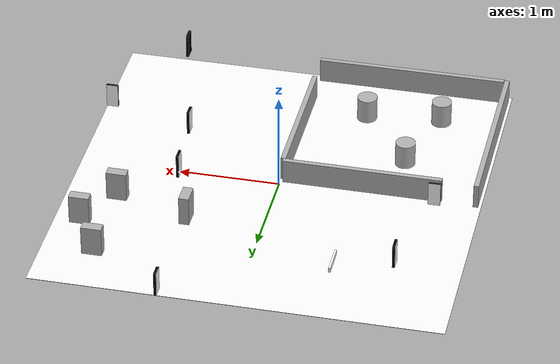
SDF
<?xml version="1.0"?>
<sdf version="1.6">
  <world name="default">
  <plugin
    filename="gz-sim-physics-system"
    name="gz::sim::systems::Physics">
  </plugin>
  <plugin
    filename="gz-sim-user-commands-system"
    name="gz::sim::systems::UserCommands">
  </plugin>
  <plugin
    filename="gz-sim-scene-broadcaster-system"
    name="gz::sim::systems::SceneBroadcaster">
  </plugin>
  <plugin
    filename="gz-sim-sensors-system"
    name="gz::sim::systems::Sensors">
    <render_engine>ogre2</render_engine>
  </plugin>
  <plugin
    filename="gz-sim-imu-system"
    name="gz::sim::systems::Imu">
  </plugin>

    <model name='ground'>
      <pose>0 0 0 0 -0 0</pose>
      <scale>1 1 1</scale>
      <link name='ground'>
        <pose>0 0 0 0 -0 0</pose>
        <velocity>0 0 0 0 -0 0</velocity>
        <acceleration>0 0 0 0 -0 0</acceleration>
        <wrench>0 0 0 0 -0 0</wrench>
      </link>
    </model>

    <model name="barrier_1">
      <static>true</static>
      <pose>1.49 0.54 0.15 0 0 0</pose>
      <link name="link">
        <visual name="visual">
          <geometry>
            <box>
              <size>0.2 0.1 0.3</size>
            </box>
          </geometry>
          <material>
            <ambient>0.7 0.7 0.7 1</ambient>
            <diffuse>0.7 0.7 0.7 1</diffuse>
            <specular>0.01 0.01 0.01 1</specular>
          </material>
        </visual>
        <collision name="collision">
          <geometry>
            <box>
              <size>0.25 0.1 0.3</size>
            </box>
          </geometry>
        </collision>
      </link>
    </model>

    <model name="barrier_2">
      <static>true</static>
      <pose>1.74 1.0 0.15 0 0 0</pose>
      <link name="link">
        <visual name="visual">
          <geometry>
            <box>
              <size>0.2 0.1 0.3</size>
            </box>
          </geometry>
          <material>
            <ambient>0.7 0.7 0.7 1</ambient>
            <diffuse>0.7 0.7 0.7 1</diffuse>
            <specular>0.01 0.01 0.01 1</specular>
          </material>
        </visual>
        <collision name="collision">
          <geometry>
            <box>
              <size>0.25 0.1 0.3</size>
            </box>
          </geometry>
        </collision>
      </link>
    </model>

    <model name="barrier_3">
      <static>true</static>
      <pose>1.49 1.464 0.15 0 0 0</pose>
      <link name="link">
        <visual name="visual">
          <geometry>
            <box>
              <size>0.2 0.1 0.3</size>
            </box>
          </geometry>
          <material>
            <ambient>0.7 0.7 0.7 1</ambient>
            <diffuse>0.7 0.7 0.7 1</diffuse>
            <specular>0.01 0.01 0.01 1</specular>
          </material>
        </visual>
        <collision name="collision">
          <geometry>
            <box>
              <size>0.25 0.1 0.3</size>
            </box>
          </geometry>
        </collision>
      </link>
    </model>

    <model name="parking_barrier_left">
      <static>true</static>
      <pose>0.75 0.75 0.15 0 0 0</pose>
      <link name="link">
        <visual name="visual">
          <geometry>
            <box>
              <size>0.1 0.2 0.3</size>
            </box>
          </geometry>
          <material>
            <ambient>0.7 0.7 0.7 1</ambient>
            <diffuse>0.7 0.7 0.7 1</diffuse>
            <specular>0.01 0.01 0.01 1</specular>
          </material>
        </visual>
        <collision name="collision">
          <geometry>
            <box>
              <size>0.25 0.1 0.3</size>
            </box>
          </geometry>
        </collision>
      </link>
    </model>

    <model name="traffic_tunnel">
      <static>true</static>
      <allow_auto_disable>true</allow_auto_disable>
      <pose>-0.964699 -1.03574 0 0 0 0</pose>

      <link name="wall_1">
        <pose>-0.980783 0.049883 0 0 0 1.5708</pose>
        <self_collide>false</self_collide>
        <kinematic>false</kinematic>

        <visual name="wall_1_visual">
          <pose>0 0 0.125 0 0 0</pose>
          <geometry>
            <box>
              <size>1.9 0.05 0.25</size>
            </box>
          </geometry>
          <material>
            <ambient>0.7 0.7 0.7 1</ambient>
            <diffuse>0.7 0.7 0.7 1</diffuse>
            <specular>0.01 0.01 0.01 1</specular>
            <emissive>0 0 0 1</emissive>
          </material>
          <cast_shadows>true</cast_shadows>
          <transparency>0.0</transparency>
        </visual>

        <collision name="wall_1_collision">
          <pose>0 0 0.125 0 0 0</pose>
          <geometry>
            <box>
              <size>1.9 0.05 0.25</size>
            </box>
          </geometry>
          <surface>
            <friction>
              <ode>
                <mu>1.0</mu>
                <mu2>1.0</mu2>
              </ode>
            </friction>
            <bounce>
              <restitution_coefficient>0.0</restitution_coefficient>
              <threshold>1e6</threshold>
            </bounce>
            <contact>
              <ode>
                <soft_cfm>0.0</soft_cfm>
                <soft_erp>0.2</soft_erp>
                <kp>1e13</kp>
                <kd>1.0</kd>
                <max_vel>0.01</max_vel>
                <min_depth>0.0</min_depth>
              </ode>
            </contact>
          </surface>
        </collision>
      </link>

      <link name="wall_2">
        <pose>0 -0.89 0 0 0 0</pose>
        <self_collide>false</self_collide>
        <kinematic>false</kinematic>

        <visual name="wall_2_visual">
          <pose>0 0 0.125 0 0 0</pose>
          <geometry>
            <box>
              <size>1.9 0.05 0.25</size>
            </box>
          </geometry>
          <material>
            <ambient>0.7 0.7 0.7 1</ambient>
            <diffuse>0.7 0.7 0.7 1</diffuse>
            <specular>0.01 0.01 0.01 1</specular>
            <emissive>0 0 0 1</emissive>
          </material>
          <cast_shadows>true</cast_shadows>
          <transparency>0.0</transparency>
        </visual>

        <collision name="wall_2_collision">
          <pose>0 0 0.125 0 0 0</pose>
          <geometry>
            <box>
              <size>1.9 0.05 0.25</size>
            </box>
          </geometry>
          <surface>
            <friction>
              <ode>
                <mu>1.0</mu>
                <mu2>1.0</mu2>
              </ode>
            </friction>
            <bounce>
              <restitution_coefficient>0.0</restitution_coefficient>
              <threshold>1e6</threshold>
            </bounce>
            <contact>
              <ode>
                <soft_cfm>0.0</soft_cfm>
                <soft_erp>0.2</soft_erp>
                <kp>1e13</kp>
                <kd>1.0</kd>
                <max_vel>0.01</max_vel>
                <min_depth>0.0</min_depth>
              </ode>
            </contact>
          </surface>
        </collision>
      </link>

      <link name="wall_3">
        <pose>0.943396 0.183669 0 0 0 1.5708</pose>
        <self_collide>false</self_collide>
        <kinematic>false</kinematic>

        <visual name="wall_3_visual">
          <pose>0 0 0.125 0 0 0</pose>
          <geometry>
            <box>
              <size>1.5 0.05 0.25</size>
            </box>
          </geometry>
          <material>
            <ambient>0.7 0.7 0.7 1</ambient>
            <diffuse>0.7 0.7 0.7 1</diffuse>
            <specular>0.01 0.01 0.01 1</specular>
            <emissive>0 0 0 1</emissive>
          </material>
          <cast_shadows>true</cast_shadows>
          <transparency>0.0</transparency>
        </visual>

        <collision name="wall_3_collision">
          <pose>0 0 0.125 0 0 0</pose>
          <geometry>
            <box>
              <size>1.5 0.05 0.25</size>
            </box>
          </geometry>
          <surface>
            <friction>
              <ode>
                <mu>1.0</mu>
                <mu2>1.0</mu2>
              </ode>
            </friction>
            <bounce>
              <restitution_coefficient>0.0</restitution_coefficient>
              <threshold>1e6</threshold>
            </bounce>
            <contact>
              <ode>
                <soft_cfm>0.0</soft_cfm>
                <soft_erp>0.2</soft_erp>
                <kp>1e13</kp>
                <kd>1.0</kd>
                <max_vel>0.01</max_vel>
                <min_depth>0.0</min_depth>
              </ode>
            </contact>
          </surface>
        </collision>
      </link>

      <link name="wall_4">
        <pose>0.15 0.96 0 0 0 3.14159</pose>
        <self_collide>false</self_collide>
        <kinematic>false</kinematic>

        <visual name="wall_4_visual">
          <pose>0 0 0.125 0 0 0</pose>
          <geometry>
            <box>
              <size>1.58 0.05 0.25</size>
            </box>
          </geometry>
          <material>
            <ambient>0.7 0.7 0.7 1</ambient>
            <diffuse>0.7 0.7 0.7 1</diffuse>
            <specular>0.01 0.01 0.01 1</specular>
            <emissive>0 0 0 1</emissive>
          </material>
          <cast_shadows>true</cast_shadows>
          <transparency>0.0</transparency>
        </visual>

        <collision name="wall_4_collision">
          <pose>0 0 0.125 0 0 0</pose>
          <geometry>
            <box>
              <size>1.58 0.05 0.25</size>
            </box>
          </geometry>
          <surface>
            <friction>
              <ode>
                <mu>1.0</mu>
                <mu2>1.0</mu2>
              </ode>
            </friction>
            <bounce>
              <restitution_coefficient>0.0</restitution_coefficient>
              <threshold>1e6</threshold>
            </bounce>
            <contact>
              <ode>
                <soft_cfm>0.0</soft_cfm>
                <soft_erp>0.2</soft_erp>
                <kp>1e13</kp>
                <kd>1.0</kd>
                <max_vel>0.01</max_vel>
                <min_depth>0.0</min_depth>
              </ode>
            </contact>
          </surface>
        </collision>
      </link>
    </model>

    <model name="tunnel_obstacle">
      <static>true</static>
      <pose>-1.04145 -1.12671 0 0 0 0</pose>

      <link name="obstacle_1">
        <pose>0.42322 -0.212034 0.125 0 0 0</pose>
        <inertial>
          <mass>0.0416663</mass>
          <inertia>
            <ixx>0.00098188</ixx>
            <ixy>0</ixy>
            <ixz>0</ixz>
            <iyy>0.00098188</iyy>
            <iyz>0</iyz>
            <izz>0.00046751</izz>
          </inertia>
        </inertial>

        <visual name="visual">
          <geometry>
            <cylinder>
              <radius>0.1</radius>
              <length>0.25</length>
            </cylinder>
          </geometry>
          <material>
            <ambient>0.7 0.7 0.7 1</ambient>
            <diffuse>0.7 0.7 0.7 1</diffuse>
            <specular>0.01 0.01 0.01 1</specular>
          </material>
        </visual>

        <collision name="collision">
          <geometry>
            <cylinder>
              <radius>0.1</radius>
              <length>0.25</length>
            </cylinder>
          </geometry>
          <surface>
            <friction>
              <ode>
                <mu>1.0</mu>
                <mu2>1.0</mu2>
              </ode>
            </friction>
            <bounce>
              <restitution_coefficient>0.0</restitution_coefficient>
              <threshold>1e6</threshold>
            </bounce>
            <contact>
              <ode>
                <soft_cfm>0.0</soft_cfm>
                <soft_erp>0.2</soft_erp>
                <kp>1e13</kp>
                <kd>1.0</kd>
                <max_vel>0.01</max_vel>
                <min_depth>0.0</min_depth>
              </ode>
            </contact>
          </surface>
        </collision>
      </link>

      <link name="obstacle_2">
        <pose>-0.323729 -0.287563 0.125 0 0 0</pose>
        <inertial>
          <mass>0.0416663</mass>
          <inertia>
            <ixx>0.00098188</ixx>
            <ixy>0</ixy>
            <ixz>0</ixz>
            <iyy>0.00098188</iyy>
            <iyz>0</iyz>
            <izz>0.00046751</izz>
          </inertia>
        </inertial>

        <visual name="visual">
          <geometry>
            <cylinder>
              <radius>0.1</radius>
              <length>0.25</length>
            </cylinder>
          </geometry>
          <material>
            <ambient>0.7 0.7 0.7 1</ambient>
            <diffuse>0.7 0.7 0.7 1</diffuse>
            <specular>0.01 0.01 0.01 1</specular>
          </material>
        </visual>

        <collision name="collision">
          <geometry>
            <cylinder>
              <radius>0.1</radius>
              <length>0.25</length>
            </cylinder>
          </geometry>
          <surface>
            <friction>
              <ode>
                <mu>1.0</mu>
                <mu2>1.0</mu2>
              </ode>
            </friction>
            <bounce>
              <restitution_coefficient>0.0</restitution_coefficient>
              <threshold>1e6</threshold>
            </bounce>
            <contact>
              <ode>
                <soft_cfm>0.0</soft_cfm>
                <soft_erp>0.2</soft_erp>
                <kp>1e13</kp>
                <kd>1.0</kd>
                <max_vel>0.01</max_vel>
                <min_depth>0.0</min_depth>
              </ode>
            </contact>
          </surface>
        </collision>
      </link>

      <link name="obstacle_3">
        <pose>-0.099492 0.499594 0.125 0 0 0</pose>
        <inertial>
          <mass>0.0416663</mass>
          <inertia>
            <ixx>0.00098188</ixx>
            <ixy>0</ixy>
            <ixz>0</ixz>
            <iyy>0.00098188</iyy>
            <iyz>0</iyz>
            <izz>0.00046751</izz>
          </inertia>
        </inertial>

        <visual name="visual">
          <geometry>
            <cylinder>
              <radius>0.1</radius>
              <length>0.25</length>
            </cylinder>
          </geometry>
          <material>
            <ambient>0.7 0.7 0.7 1</ambient>
            <diffuse>0.7 0.7 0.7 1</diffuse>
            <specular>0.01 0.01 0.01 1</specular>
          </material>
        </visual>

        <collision name="collision">
          <geometry>
            <cylinder>
              <radius>0.1</radius>
              <length>0.25</length>
            </cylinder>
          </geometry>
          <surface>
            <friction>
              <ode>
                <mu>1.0</mu>
                <mu2>1.0</mu2>
              </ode>
            </friction>
            <bounce>
              <restitution_coefficient>0.0</restitution_coefficient>
              <threshold>1e6</threshold>
            </bounce>
            <contact>
              <ode>
                <soft_cfm>0.0</soft_cfm>
                <soft_erp>0.2</soft_erp>
                <kp>1e13</kp>
                <kd>1.0</kd>
                <max_vel>0.01</max_vel>
                <min_depth>0.0</min_depth>
              </ode>
            </contact>
          </surface>
        </collision>
      </link>
    </model>

    <include>
      <uri>https://fuel.gazebosim.org/1.0/OpenRobotics/models/Sun</uri>
    </include>

    <scene>
      <shadows>false</shadows>
    </scene>

    <gui fullscreen='0'>
      <camera name='user_camera'>
        <pose>0.319654 -0.235002 9.29441 0 1.5138 0.009599</pose>
        <view_controller>orbit</view_controller>
        <projection_type>perspective</projection_type>
      </camera>
    </gui>

    <physics type="ode">
      <real_time_update_rate>1000.0</real_time_update_rate>
      <max_step_size>0.001</max_step_size>
      <real_time_factor>1</real_time_factor>
      <ode>
        <solver>
          <type>quick</type>
          <iters>150</iters>
          <precon_iters>0</precon_iters>
          <sor>1.400000</sor>
          <use_dynamic_moi_rescaling>1</use_dynamic_moi_rescaling>
        </solver>
        <constraints>
          <cfm>0.00001</cfm>
          <erp>0.2</erp>
          <contact_max_correcting_vel>2000.000000</contact_max_correcting_vel>
          <contact_surface_layer>0.01000</contact_surface_layer>
        </constraints>
      </ode>
    </physics>

    <model name="turtlebot3_world">
      <static>1</static>
      <include>
        <uri>model://turtlebot3_autorace/course</uri>
        <pose> 0 0 0 0 0 -3.14</pose>
      </include>
      <include>
        <uri>model://turtlebot3_autorace/traffic_light</uri>
        <pose>1.4 -2.0 0.07 0 -0 -1.57</pose>
      </include>
      <include>
        <uri>model://turtlebot3_autorace/traffic_intersection</uri>
        <pose> 1.95 -1.0 0.125 0 -0 0.0</pose>
      </include>
      <include>
        <uri>model://turtlebot3_autorace/traffic_left</uri>
        <pose>1.08 -0.728 0.125 0 -0 -1.57</pose>
      </include>
      <include>
        <uri>model://turtlebot3_autorace/traffic_construction</uri>
        <pose> 1.0 0.04 0.125 0 -0 -1.57</pose>
      </include>
      <include>
        <uri>model://turtlebot3_autorace/traffic_parking</uri>
        <pose> 0.74 1.95 0.13 0 0 -1.57</pose>
      </include>
      <include>
        <uri>model://turtlebot3_autorace/traffic_stop</uri>
        <pose> -1.35 1.04 0.125 0 -0 -1.57</pose>
      </include>
      <include>
        <uri>model://turtlebot3_autorace/traffic_bar</uri>
        <pose> -0.8  1.28 0.125 0 0 -1.57</pose>
      </include>
      <include>
        <uri>model://turtlebot3_autorace/traffic_tunnel</uri>
        <pose> -1.544 0.00 0.125 0 0 0</pose>
      </include>
    </model>

  </world>
</sdf>

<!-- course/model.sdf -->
<sdf version="1.9">
  <model name="course">
    <static>true</static>
    <link name="course_link">
      <collision name="course_collision">
        <geometry>
          <plane>
            <normal>0 0 1</normal>
            <size>4 4</size>
          </plane>
        </geometry>
        <surface>
          <friction>
            <ode>
              <mu>100</mu>
              <mu2>50</mu2>
            </ode>
          </friction>
        </surface>
      </collision>
      <visual name="course_visual">
        <cast_shadows>false</cast_shadows>
        <geometry>
	        <plane>
            <normal>0 0 1</normal>
            <size>4 4</size>
          </plane>
        </geometry>
	      <material>
          <ambient>1 1 1 1</ambient>
          <diffuse>1 1 1 1</diffuse>
          <specular>0.1 0.1 0.1 1</specular>
          <pbr>
            <metal>
              <albedo_map>model://turtlebot3_autorace/course/materials/textures/course.png</albedo_map>
              <roughness>1.0</roughness>
              <metalness>0.0</metalness>
            </metal>
          </pbr>
        </material>
      </visual>
    </link>
  </model>
</sdf>

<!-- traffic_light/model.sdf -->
<sdf version="1.9">
  <model name="traffic_light">

    <joint name="world_fixed" type="fixed">
      <parent>world</parent>
      <child>light_base</child>
    </joint>

    <link name="light_base">
      <pose>0 0 0.125 0 0 0</pose>
      <inertial>
        <mass>0.1</mass>
        <inertia>
          <ixx>1e-4</ixx>
          <iyy>1e-4</iyy>
          <izz>1e-4</izz>
          <ixy>0</ixy>
          <ixz>0</ixz>
          <iyz>0</iyz>
        </inertia>
      </inertial>

      <visual name="base_black">
        <geometry>
          <box>
            <size>0.12 0.025 0.25</size>
          </box>
        </geometry>
        <material>
          <ambient>0 0 0 1</ambient>
          <diffuse>0 0 0 1</diffuse>
          <specular>0.1 0.1 0.1 1</specular>
        </material>
      </visual>

      <collision name="base_collision">
        <geometry>
          <box>
            <size>0.12 0.025 0.25</size>
          </box>
        </geometry>
      </collision>
    </link>

    <link name="red_slide">
      <pose>0 0 0.125 0 0 0</pose>
      <inertial>
        <mass>0.01</mass>
        <inertia>
          <ixx>1e-5</ixx>
          <iyy>1e-5</iyy>
          <izz>1e-5</izz>
          <ixy>0</ixy>
          <ixz>0</ixz>
          <iyz>0</iyz>
        </inertia>
      </inertial>
      <visual name="red_v">
        <geometry>
          <box>
            <size>0.119 0.001 0.249</size>
          </box>
        </geometry>
        <material>
          <ambient>1 1 1 1</ambient>
          <diffuse>1 1 1 1</diffuse>
          <pbr>
            <metal>
              <albedo_map>model://turtlebot3_autorace/traffic_light/materials/textures/traffic_light_red.png</albedo_map>
            </metal>
          </pbr>
        </material>
      </visual>
      <collision name="red_collision">
        <geometry>
          <box>
            <size>0.119 0.001 0.249</size>
          </box>
        </geometry>
      </collision>
    </link>

    <link name="yellow_slide">
      <pose>0 0 0.125 0 0 0</pose>
      <inertial>
        <mass>0.01</mass>
        <inertia>
          <ixx>1e-5</ixx>
          <iyy>1e-5</iyy>
          <izz>1e-5</izz>
          <ixy>0</ixy>
          <ixz>0</ixz>
          <iyz>0</iyz>
        </inertia>
      </inertial>
      <visual name="yel_v">
        <geometry>
          <box>
            <size>0.119 0.001 0.249</size>
          </box>
        </geometry>
        <material>
          <ambient>1 1 1 1</ambient>
          <diffuse>1 1 1 1</diffuse>
          <pbr>
            <metal>
              <albedo_map>model://turtlebot3_autorace/traffic_light/materials/textures/traffic_light_yellow.png</albedo_map>
            </metal>
          </pbr>
        </material>
      </visual>
      <collision name="yellow_collision">
        <geometry>
          <box>
            <size>0.119 0.001 0.249</size>
          </box>
        </geometry>
      </collision>
    </link>

    <link name="green_slide">
      <pose>0 0 0.125 0 0 0</pose>
      <inertial>
        <mass>0.01</mass>
        <inertia>
          <ixx>1e-5</ixx>
          <iyy>1e-5</iyy>
          <izz>1e-5</izz>
          <ixy>0</ixy>
          <ixz>0</ixz>
          <iyz>0</iyz>
        </inertia>
      </inertial>
      <visual name="grn_v">
        <geometry>
          <box>
            <size>0.119 0.001 0.249</size>
          </box>
        </geometry>
        <material>
          <ambient>1 1 1 1</ambient>
          <diffuse>1 1 1 1</diffuse>
          <pbr>
            <metal>
              <albedo_map>model://turtlebot3_autorace/traffic_light/materials/textures/traffic_light_green.png</albedo_map>
            </metal>
          </pbr>
        </material>
      </visual>
      <collision name="green_collision">
        <geometry>
          <box>
            <size>0.119 0.001 0.249</size>
          </box>
        </geometry>
      </collision>
    </link>

    <joint name="red_joint" type="prismatic">
      <parent>light_base</parent>
      <child>red_slide</child>
      <axis>
        <xyz>0 1 0</xyz>
        <limit>
          <lower>-0.015</lower>
          <upper>0</upper>
        </limit>
      </axis>
    </joint>

    <joint name="yellow_joint" type="prismatic">
      <parent>light_base</parent>
      <child>yellow_slide</child>
      <axis>
        <xyz>0 1 0</xyz>
        <limit>
          <lower>-0.016</lower>
          <upper>0</upper>
        </limit>
      </axis>
    </joint>

    <joint name="green_joint" type="prismatic">
      <parent>light_base</parent>
      <child>green_slide</child>
      <axis>
        <xyz>0 1 0</xyz>
        <limit>
          <lower>-0.017</lower>
          <upper>0</upper>
        </limit>
      </axis>
    </joint>

    <plugin
      filename="libtraffic_light_plugin.so"
      name="turtlebot3_gazebo::TrafficLightPlugin">
      <red_duration>3.0</red_duration>
      <yellow_duration>3.0</yellow_duration>
      <green_duration>3.0</green_duration>
    </plugin>

  </model>
</sdf>

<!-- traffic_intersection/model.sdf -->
<sdf version="1.6">
  <model name="traffic_intersection">
    <static>true</static>
    <link name="box">
      <pose>0 0 0 0 0 0</pose>
      <collision name="collision">
        <geometry>
          <box>
            <size>0.12 0.025 0.25</size>
          </box>
        </geometry>
      </collision>
            <visual name='visual_base_pure_black'>
        <geometry>
          <box>
            <size>0.12 0.025 0.25</size>
          </box>
        </geometry>
        <material>
          <ambient>0 0 0 1</ambient>
          <diffuse>0 0 0 1</diffuse>
          <specular>0 0 0 1</specular>
          <emissive>0 0 0 1</emissive>
        </material>
      </visual>

      <visual name='visual_sticker_front'>
        <pose>0 -0.013 0 0 0 0</pose>
        <geometry>
          <box>
            <size>0.119 0.001 0.249</size>
          </box>
        </geometry>
        <material>
          <ambient>1 1 1 1</ambient>
          <diffuse>1 1 1 1</diffuse>
          <specular>0.1 0.1 0.1 1</specular>
          <pbr>
            <metal>
              <albedo_map>model://turtlebot3_autorace/traffic_intersection/materials/textures/traffic_intersection.png</albedo_map>
            </metal>
          </pbr>
        </material>
      </visual>

      <visual name='visual_sticker_back'>
        <pose>0 0.013 0 0 0 0</pose>
        <geometry>
          <box>
            <size>0.119 0.001 0.249</size>
          </box>
        </geometry>
        <material>
          <ambient>1 1 1 1</ambient>
          <diffuse>1 1 1 1</diffuse>
          <specular>0.1 0.1 0.1 1</specular>
          <pbr>
            <metal>
              <albedo_map>model://turtlebot3_autorace/traffic_intersection/materials/textures/traffic_intersection.png</albedo_map>
            </metal>
          </pbr>
        </material>
      </visual>
    </link>
  </model>
</sdf>

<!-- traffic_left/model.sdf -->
<sdf version="1.6">
  <model name="traffic_left">
    <static>true</static>
    <link name="box">
      <pose>0 0 0 0 0 0</pose>
      <collision name="collision">
        <geometry>
          <box>
            <size>0.12 0.025 0.25</size>
          </box>
        </geometry>
      </collision>
            <visual name='visual_base_pure_black'>
        <geometry>
          <box>
            <size>0.12 0.025 0.25</size>
          </box>
        </geometry>
        <material>
          <ambient>0 0 0 1</ambient>
          <diffuse>0 0 0 1</diffuse>
          <specular>0 0 0 1</specular>
          <emissive>0 0 0 1</emissive>
        </material>
      </visual>

      <visual name='visual_sticker_front'>
        <pose>0 -0.013 0 0 0 0</pose>
        <geometry>
          <box>
            <size>0.119 0.001 0.249</size>
          </box>
        </geometry>
        <material>
          <ambient>1 1 1 1</ambient>
          <diffuse>1 1 1 1</diffuse>
          <specular>0.1 0.1 0.1 1</specular>
          <pbr>
            <metal>
              <albedo_map>model://turtlebot3_autorace/traffic_left/materials/textures/traffic_left.png</albedo_map>
            </metal>
          </pbr>
        </material>
      </visual>

      <visual name='visual_sticker_back'>
        <pose>0 0.013 0 0 0 0</pose>
        <geometry>
          <box>
            <size>0.119 0.001 0.249</size>
          </box>
        </geometry>
        <material>
          <ambient>1 1 1 1</ambient>
          <diffuse>1 1 1 1</diffuse>
          <specular>0.1 0.1 0.1 1</specular>
          <pbr>
            <metal>
              <albedo_map>model://turtlebot3_autorace/traffic_left/materials/textures/traffic_left.png</albedo_map>
            </metal>
          </pbr>
        </material>
      </visual>
    </link>
  </model>
</sdf>

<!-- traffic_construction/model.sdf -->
<sdf version="1.6">
  <model name="traffic_construction">
    <static>true</static>
    <link name="box">
      <pose>0 0 0 0 0 0</pose>
      <collision name="collision">
        <geometry>
          <box>
            <size>0.12 0.025 0.25</size>
          </box>
        </geometry>
      </collision>
            <visual name='visual_base_pure_black'>
        <geometry>
          <box>
            <size>0.12 0.025 0.25</size>
          </box>
        </geometry>
        <material>
          <ambient>0 0 0 1</ambient>
          <diffuse>0 0 0 1</diffuse>
          <specular>0 0 0 1</specular>
          <emissive>0 0 0 1</emissive>
        </material>
      </visual>

      <visual name='visual_sticker_front'>
        <pose>0 -0.013 0 0 0 0</pose>
        <geometry>
          <box>
            <size>0.119 0.001 0.249</size>
          </box>
        </geometry>
        <material>
          <ambient>1 1 1 1</ambient>
          <diffuse>1 1 1 1</diffuse>
          <specular>0.1 0.1 0.1 1</specular>
          <pbr>
            <metal>
              <albedo_map>model://turtlebot3_autorace/traffic_construction/materials/textures/traffic_construction.png</albedo_map>
            </metal>
          </pbr>
        </material>
      </visual>

      <visual name='visual_sticker_back'>
        <pose>0 0.013 0 0 0 0</pose>
        <geometry>
          <box>
            <size>0.119 0.001 0.249</size>
          </box>
        </geometry>
        <material>
          <ambient>1 1 1 1</ambient>
          <diffuse>1 1 1 1</diffuse>
          <specular>0.1 0.1 0.1 1</specular>
          <pbr>
            <metal>
              <albedo_map>model://turtlebot3_autorace/traffic_construction/materials/textures/traffic_construction.png</albedo_map>
            </metal>
          </pbr>
        </material>
      </visual>
    </link>
  </model>
</sdf>

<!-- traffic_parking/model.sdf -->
<sdf version="1.6">
  <model name="traffic_parking">
    <static>true</static>
    <link name="box">
      <pose>0 0 0 0 0 0</pose>
      <collision name="collision">
        <geometry>
          <box>
            <size>0.12 0.025 0.25</size>
          </box>
        </geometry>
      </collision>
            <visual name='visual_base_pure_black'>
        <geometry>
          <box>
            <size>0.12 0.025 0.25</size>
          </box>
        </geometry>
        <material>
          <ambient>0 0 0 1</ambient>
          <diffuse>0 0 0 1</diffuse>
          <specular>0 0 0 1</specular>
          <emissive>0 0 0 1</emissive>
        </material>
      </visual>

      <visual name='visual_sticker_front'>
        <pose>0 -0.013 0 0 0 0</pose>
        <geometry>
          <box>
            <size>0.119 0.001 0.249</size>
          </box>
        </geometry>
        <material>
          <ambient>1 1 1 1</ambient>
          <diffuse>1 1 1 1</diffuse>
          <specular>0.1 0.1 0.1 1</specular>
          <pbr>
            <metal>
              <albedo_map>model://turtlebot3_autorace/traffic_parking/materials/textures/traffic_parking.png</albedo_map>
            </metal>
          </pbr>
        </material>
      </visual>

      <visual name='visual_sticker_back'>
        <pose>0 0.013 0 0 0 0</pose>
        <geometry>
          <box>
            <size>0.119 0.001 0.249</size>
          </box>
        </geometry>
        <material>
          <ambient>1 1 1 1</ambient>
          <diffuse>1 1 1 1</diffuse>
          <specular>0.1 0.1 0.1 1</specular>
          <pbr>
            <metal>
              <albedo_map>model://turtlebot3_autorace/traffic_parking/materials/textures/traffic_parking.png</albedo_map>
            </metal>
          </pbr>
        </material>
      </visual>
    </link>
  </model>
</sdf>

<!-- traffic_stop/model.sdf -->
<sdf version="1.6">
  <model name="traffic_stop">
    <static>true</static>
    <link name="box">
      <pose>0 0 0 0 0 0</pose>
      <collision name="collision">
        <geometry>
          <box>
            <size>0.12 0.025 0.25</size>
          </box>
        </geometry>
      </collision>
            <visual name='visual_base_pure_black'>
        <geometry>
          <box>
            <size>0.12 0.025 0.25</size>
          </box>
        </geometry>
        <material>
          <ambient>0 0 0 1</ambient>
          <diffuse>0 0 0 1</diffuse>
          <specular>0 0 0 1</specular>
          <emissive>0 0 0 1</emissive>
        </material>
      </visual>

      <visual name='visual_sticker_front'>
        <pose>0 -0.013 0 0 0 0</pose>
        <geometry>
          <box>
            <size>0.119 0.001 0.249</size>
          </box>
        </geometry>
        <material>
          <ambient>1 1 1 1</ambient>
          <diffuse>1 1 1 1</diffuse>
          <specular>0.1 0.1 0.1 1</specular>
          <pbr>
            <metal>
              <albedo_map>model://turtlebot3_autorace/traffic_stop/materials/textures/traffic_stop.png</albedo_map>
            </metal>
          </pbr>
        </material>
      </visual>

      <visual name='visual_sticker_back'>
        <pose>0 0.013 0 0 0 0</pose>
        <geometry>
          <box>
            <size>0.119 0.001 0.249</size>
          </box>
        </geometry>
        <material>
          <ambient>1 1 1 1</ambient>
          <diffuse>1 1 1 1</diffuse>
          <specular>0.1 0.1 0.1 1</specular>
          <pbr>
            <metal>
              <albedo_map>model://turtlebot3_autorace/traffic_stop/materials/textures/traffic_stop.png</albedo_map>
            </metal>
          </pbr>
        </material>
      </visual>
    </link>
  </model>
</sdf>

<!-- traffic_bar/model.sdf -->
<sdf version="1.9">
  <model name="traffic_bar">

    <link name="bar_link">
      <pose>0 0 0 0 0 0</pose>

      <inertial>
        <mass>0.1</mass>
        <inertia>
          <ixx>0.0001</ixx>
          <iyy>0.0001</iyy>
          <izz>0.0001</izz>
          <ixy>0</ixy>
          <ixz>0</ixz>
          <iyz>0</iyz>
        </inertia>
      </inertial>

      <collision name="collision">
        <geometry>
          <box>
            <size>0.30 0.02 0.05</size>
          </box>
        </geometry>
      </collision>

      <visual name="visual">
        <geometry>
          <box>
            <size>0.30 0.02 0.05</size>
          </box>
        </geometry>
        <material>
          <ambient>1 1 1 1</ambient>
          <diffuse>1 1 1 1</diffuse>
          <specular>0.1 0.1 0.1 1</specular>
          <pbr>
            <metal>
              <albedo_map>model://turtlebot3_autorace/traffic_bar/materials/textures/traffic_bar.png</albedo_map>
            </metal>
          </pbr>
        </material>
      </visual>
    </link>

    <joint name="bar_joint" type="revolute">
      <parent>world</parent>
      <child>bar_link</child>
      <pose>-0.15 0 0 0 0 0</pose>
      <axis>
        <xyz>0 1 0</xyz>
        <limit>
          <lower>-1.5708</lower>
          <upper>1.5708</upper>
          <velocity>2.0</velocity>
        </limit>
        <dynamics>
          <damping>0.2</damping>
        </dynamics>
      </axis>
    </joint>

    <plugin
      filename="gz-sim-joint-position-controller-system"
      name="gz::sim::systems::JointPositionController">
      <joint_name>bar_joint</joint_name>
      <topic>/model/traffic_bar/joint/bar_joint/0/cmd_pos</topic>
      <p_gain>20.0</p_gain>
      <i_gain>0.0</i_gain>
      <d_gain>1.0</d_gain>
      <i_max>0.0</i_max>
      <i_min>0.0</i_min>
      <cmd_max>10.0</cmd_max>
      <cmd_min>-10.0</cmd_min>
    </plugin>

    <plugin
      filename="libtraffic_bar_plugin.so"
      name="turtlebot3_gazebo::TrafficBarPlugin">
      <topic>/model/traffic_bar/joint/bar_joint/0/cmd_pos</topic>
      <down_position>0.0</down_position>
      <up_position>-1.5708</up_position>
      <down_duration>5.0</down_duration>
      <up_duration>10.0</up_duration>
      <start_open>false</start_open>
    </plugin>

  </model>
</sdf>

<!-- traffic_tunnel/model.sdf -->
<sdf version="1.6">
  <model name="traffic_tunnel">
    <pose>0 0 0.125 0 0 0</pose>
    <link name="box">
      <pose>0 0 0 0 0 0</pose>
      <collision name="collision">
        <geometry>
          <box>
            <size>0.12 0.025 0.25</size>
          </box>
        </geometry>
      </collision>
            <visual name='visual_base_pure_black'>
        <geometry>
          <box>
            <size>0.12 0.025 0.25</size>
          </box>
        </geometry>
        <material>
          <ambient>0 0 0 1</ambient>
          <diffuse>0 0 0 1</diffuse>
          <specular>0 0 0 1</specular>
          <emissive>0 0 0 1</emissive>
        </material>
      </visual>

      <visual name='visual_sticker_front'>
        <pose>0 -0.013 0 0 0 0</pose>
        <geometry>
          <box>
            <size>0.119 0.001 0.249</size>
          </box>
        </geometry>
        <material>
          <ambient>1 1 1 1</ambient>
          <diffuse>1 1 1 1</diffuse>
          <specular>0.1 0.1 0.1 1</specular>
          <pbr>
            <metal>
              <albedo_map>model://turtlebot3_autorace/traffic_tunnel/materials/textures/tunnel.png</albedo_map>
            </metal>
          </pbr>
        </material>
      </visual>

      <visual name='visual_sticker_back'>
        <pose>0 0.013 0 0 0 0</pose>
        <geometry>
          <box>
            <size>0.119 0.001 0.249</size>
          </box>
        </geometry>
        <material>
          <ambient>1 1 1 1</ambient>
          <diffuse>1 1 1 1</diffuse>
          <specular>0.1 0.1 0.1 1</specular>
          <pbr>
            <metal>
              <albedo_map>model://turtlebot3_autorace/traffic_tunnel/materials/textures/tunnel.png</albedo_map>
            </metal>
          </pbr>
        </material>
      </visual>
    </link>
  </model>
</sdf>
